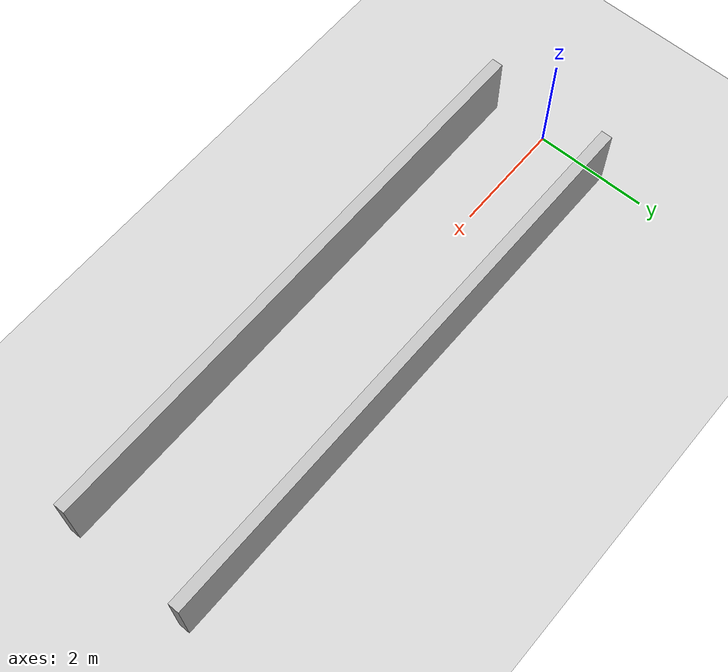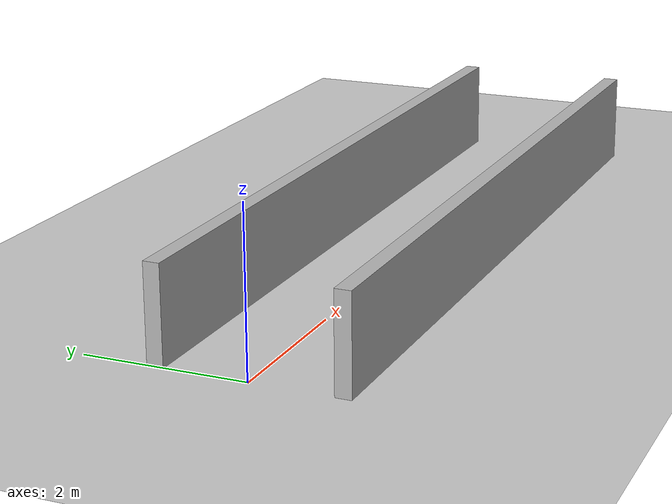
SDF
<?xml version="1.0"?>
<sdf version="1.6">
  <world name="v2-04e-corridor-s4704">
    <gravity>0 0 -9.81</gravity>
    <physics name="v2_deterministic" type="ode">
      <max_step_size>0.002</max_step_size>
      <real_time_update_rate>500</real_time_update_rate>
    </physics>
    <include>
      <uri>model://sun</uri>
    </include>
    <include>
      <uri>model://ground_plane</uri>
    </include>
    <model name="corridor-left">
      <static>true</static>
      <pose>4.993373549 1.094233600 0.600000000 0 0 -0.003633053</pose>
      <link name="link">
        <collision name="collision">
          <geometry>
            <box>
              <size>10.000000 0.200000 1.200000</size>
            </box>
          </geometry>
        </collision>
        <visual name="visual">
          <geometry>
            <box>
              <size>10.000000 0.200000 1.200000</size>
            </box>
          </geometry>
        </visual>
      </link>
    </model>
    <model name="corridor-right">
      <static>true</static>
      <pose>5.003694151 -1.113174162 0.600000000 0 0 -0.003812446</pose>
      <link name="link">
        <collision name="collision">
          <geometry>
            <box>
              <size>10.000000 0.200000 1.200000</size>
            </box>
          </geometry>
        </collision>
        <visual name="visual">
          <geometry>
            <box>
              <size>10.000000 0.200000 1.200000</size>
            </box>
          </geometry>
        </visual>
      </link>
    </model>
  </world>
</sdf>
